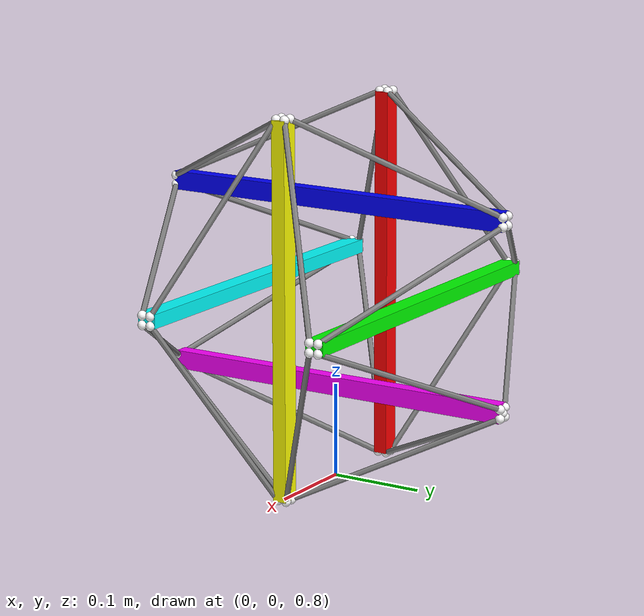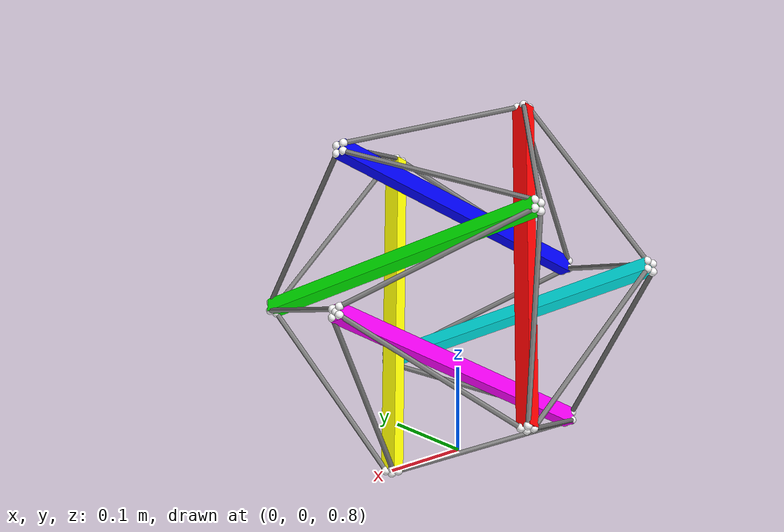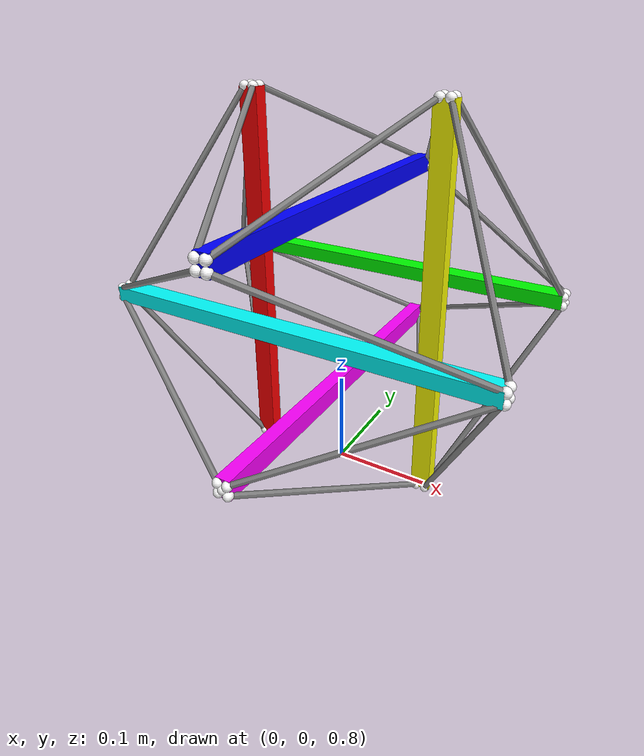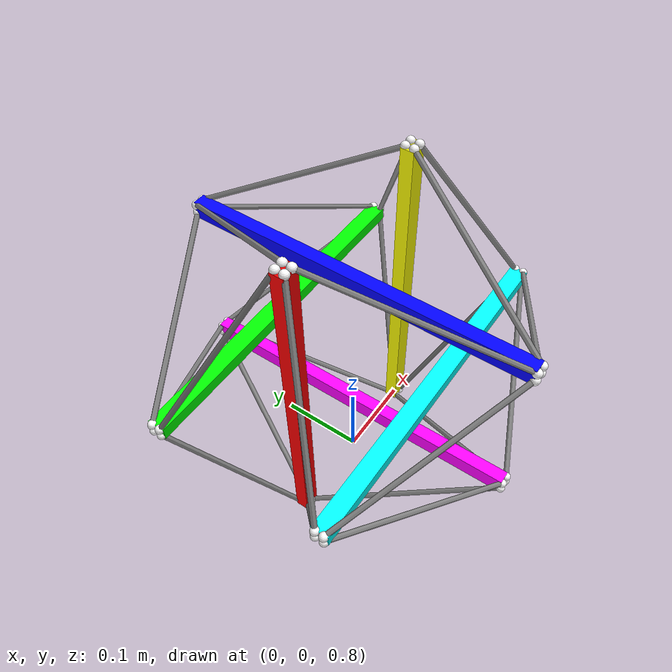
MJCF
<mujoco model="tensegrity">
  <option timestep="0.002" collision="predefined"/>
  <default>
    <site size="0.005" rgba="1 1 1 1"/>
    <default class="tendon_actuator">
      <general ctrllimited="true" ctrlrange="-10.0 0" dyntype="filter" dynprm="0.02"/> <!-- for real2sim -->
    </default>
    <default class="tendon_spatial">
      <tendon damping="5" stiffness="50" frictionloss="0.5"/>
    </default>
  </default>
  <worldbody>
    <light pos="0 1 1" dir="0 -1 -1" diffuse="1 1 1"/>

      <!-- link -->
    <body name="link1" pos="-0.1 0 1">
      <geom name="link1" type="box" size="0.01 0.0075 0.2" mass="0.1" rgba="1 0 0 1" pos="0 0 0"/>
      <joint name="link1" type="free"/>
      <site name="link1_top1" pos="0.005 0.005 0.2"/>
      <site name="link1_top2" pos="-0.005 0.005 0.2"/>
      <site name="link1_top3" pos="-0.005 -0.005 0.2"/>
      <site name="link1_top4" pos="0.005 -0.005 0.2"/>
      <site name="link1_bottom1" pos="0.005 0.005 -0.2"/>
      <site name="link1_bottom2" pos="-0.005 0.005 -0.2"/>
      <site name="link1_bottom3" pos="-0.005 -0.005 -0.2"/>
      <site name="link1_bottom4" pos="0.005 -0.005 -0.2"/>
      <site name="imu" pos="0.0 0 0"/>
    </body>

    <body name="link2" pos="0.1 0 1">
      <geom name="link2" type="box" size="0.01 0.0075 0.2" mass="0.1" rgba="1 1 0 1" pos="0 0 0"/>
      <joint name="link2" type="free"/>
      <site name="link2_top1" pos="0.005 0.005 0.2"/>
      <site name="link2_top2" pos="-0.005 0.005 0.2"/>
      <site name="link2_top3" pos="-0.005 -0.005 0.2"/>
      <site name="link2_top4" pos="0.005 -0.005 0.2"/>
      <site name="link2_bottom1" pos="0.005 0.005 -0.2"/>
      <site name="link2_bottom2" pos="-0.005 0.005 -0.2"/>
      <site name="link2_bottom3" pos="-0.005 -0.005 -0.2"/>
      <site name="link2_bottom4" pos="0.005 -0.005 -0.2"/>
    </body>

    <body name="link3" pos="0 0.1 1">
      <geom name="link3" type="box" size="0.2 0.01 0.0075" mass="0.1" rgba="0 1 0 1" pos="0 0 0"/>
      <joint name="link3" type="free"/>
      <site name="link3_top1" pos="0.2 0.005 0.005"/>
      <site name="link3_top2" pos="0.2 -0.005 0.005"/>
      <site name="link3_top3" pos="0.2 -0.005 -0.005"/>
      <site name="link3_top4" pos="0.2 0.005 -0.005"/>
      <site name="link3_bottom1" pos="-0.2 0.005 0.005"/>
      <site name="link3_bottom2" pos="-0.2 -0.005 0.005"/>
      <site name="link3_bottom3" pos="-0.2 -0.005 -0.005"/>
      <site name="link3_bottom4" pos="-0.2 0.005 -0.005"/>
    </body>

    <body name="link4" pos="0 -0.1 1">
      <geom name="link4" type="box" size="0.2 0.01 0.0075" mass="0.1" rgba="0 1 1 1" pos="0 0 0"/>
      <joint name="link4" type="free"/>
      <site name="link4_top1" pos="0.2 0.005 0.005"/>
      <site name="link4_top2" pos="0.2 -0.005 0.005"/>
      <site name="link4_top3" pos="0.2 -0.005 -0.005"/>
      <site name="link4_top4" pos="0.2 0.005 -0.005"/>
      <site name="link4_bottom1" pos="-0.2 0.005 0.005"/>
      <site name="link4_bottom2" pos="-0.2 -0.005 0.005"/>
      <site name="link4_bottom3" pos="-0.2 -0.005 -0.005"/>
      <site name="link4_bottom4" pos="-0.2 0.005 -0.005"/>
    </body>

    <body name="link5" pos="0 0 1.1">
      <geom name="link5" type="box" size="0.0075 0.2 0.01" mass="0.1" rgba="0 0 1 1" pos="0 0 0"/>
      <joint name="link5" type="free"/>
      <site name="link5_top1" pos="0.005 0.2 0.005"/>
      <site name="link5_top2" pos="0.005 0.2 -0.005"/>
      <site name="link5_top3" pos="-0.005 0.2 -0.005"/>
      <site name="link5_top4" pos="-0.005 0.2 0.005"/>
      <site name="link5_bottom1" pos="0.005 -0.2 0.005"/>
      <site name="link5_bottom2" pos="0.005 -0.2 -0.005"/>
      <site name="link5_bottom3" pos="-0.005 -0.2 -0.005"/>
      <site name="link5_bottom4" pos="-0.005 -0.2 0.005"/>
    </body>

    <body name="link6" pos="0 0 0.9">
      <geom name="link6" type="box" size="0.0075 0.2 0.01" mass="0.1" rgba="1 0 1 1" pos="0 0 0"/>
      <joint name="link6" type="free"/>
      <site name="link6_top" pos="0.0 0.2 0.0"/>
      <site name="link6_top1" pos="0.005 0.2 0.005"/>
      <site name="link6_top2" pos="0.005 0.2 -0.005"/>
      <site name="link6_top3" pos="-0.005 0.2 -0.005"/>
      <site name="link6_top4" pos="-0.005 0.2 0.005"/>
      <site name="link6_bottom" pos="0.0 -0.2 0.0"/>
      <site name="link6_bottom1" pos="0.005 -0.2 0.005"/>
      <site name="link6_bottom2" pos="0.005 -0.2 -0.005"/>
      <site name="link6_bottom3" pos="-0.005 -0.2 -0.005"/>
      <site name="link6_bottom4" pos="-0.005 -0.2 0.005"/>
    </body>

  </worldbody>

  <tendon>
    <!-- link1 -->
    <spatial name="link1t_3b" class="tendon_spatial">
      <site site="link1_top2"/>
      <site site="link3_bottom2"/>
    </spatial>
    <spatial name="link1t_4b" class="tendon_spatial">
      <site site="link1_top3"/>
      <site site="link4_bottom1"/>
    </spatial>
    <spatial name="link1b_3b" class="tendon_spatial">
      <site site="link1_bottom2"/>
      <site site="link3_bottom3"/>
    </spatial>
    <spatial name="link1b_4b" class="tendon_spatial">
      <site site="link1_bottom3"/>
      <site site="link4_bottom4"/>
    </spatial>
    <spatial name="link1b_6t" class="tendon_spatial">
      <site site="link1_bottom1"/>
      <site site="link6_top3"/>
    </spatial>
    <spatial name="link1b_6b" class="tendon_spatial">
      <site site="link1_bottom4"/>
      <site site="link6_bottom3"/>
    </spatial>
    <spatial name="link1t_5t" class="tendon_spatial">
      <site site="link1_top1"/>
      <site site="link5_top4"/>
    </spatial>
    <spatial name="link1t_5b" class="tendon_spatial">
      <site site="link1_top4"/>
      <site site="link5_bottom4"/>
    </spatial>

    <!-- link2 -->
    <spatial name="link2t_3t" class="tendon_spatial">
      <site site="link2_top1"/>
      <site site="link3_top2"/>
    </spatial>
    <spatial name="link2t_4t" class="tendon_spatial">
      <site site="link2_top4"/>
      <site site="link4_top1"/>
    </spatial>
    <spatial name="link2b_3t" class="tendon_spatial">
      <site site="link2_bottom1"/>
      <site site="link3_top3"/>
    </spatial>
    <spatial name="link2b_4t" class="tendon_spatial">
      <site site="link2_bottom4"/>
      <site site="link4_top4"/>
    </spatial>
    <spatial name="link2b_6t" class="tendon_spatial">
      <site site="link2_bottom2"/>
      <site site="link6_top2"/>
    </spatial>
    <spatial name="link2b_6b" class="tendon_spatial">
      <site site="link2_bottom3"/>
      <site site="link6_bottom2"/>
    </spatial>
    <spatial name="link2t_5t" class="tendon_spatial">
      <site site="link2_top2"/>
      <site site="link5_top1"/>
    </spatial>
    <spatial name="link2t_5b" class="tendon_spatial">
      <site site="link2_top3"/>
      <site site="link5_bottom1"/>
    </spatial>

    <!-- link3 -->
    <spatial name="link3t_5t" class="tendon_spatial">
      <site site="link3_top1"/>
      <site site="link5_top2"/>
    </spatial>
    <spatial name="link3b_5t" class="tendon_spatial">
      <site site="link3_bottom1"/>
      <site site="link5_top3"/>
    </spatial>
    <spatial name="link3t_6t" class="tendon_spatial">
      <site site="link3_top4"/>
      <site site="link6_top1"/>
    </spatial>
    <spatial name="link3b_6t" class="tendon_spatial">
      <site site="link3_bottom4"/>
      <site site="link6_top4"/>
    </spatial>

    <!-- link4 -->
    <spatial name="link4t_5b" class="tendon_spatial">
      <site site="link4_top2"/>
      <site site="link5_bottom2"/>
    </spatial>
    <spatial name="link4b_5b" class="tendon_spatial">
      <site site="link4_bottom2"/>
      <site site="link5_bottom3"/>
    </spatial>
    <spatial name="link4t_6b" class="tendon_spatial">
      <site site="link4_top3"/>
      <site site="link6_bottom1"/>
    </spatial>
    <spatial name="link4b_6b" class="tendon_spatial">
      <site site="link4_bottom3"/>
      <site site="link6_bottom4"/>
    </spatial>
  </tendon>

  <actuator>
    <!-- tention-controlled actuators-->
    <general name="link1t_3b" tendon="link1t_3b"  class="tendon_actuator"/>
    <general name="link1t_4b" tendon="link1t_4b"  class="tendon_actuator"/>
    <general name="link1b_3b" tendon="link1b_3b"  class="tendon_actuator"/>
    <general name="link1b_4b" tendon="link1b_4b"  class="tendon_actuator"/>
    <general name="link1b_6t" tendon="link1b_6t"  class="tendon_actuator"/>
    <general name="link1b_6b" tendon="link1b_6b"  class="tendon_actuator"/>
    <general name="link1t_5t" tendon="link1t_5t"  class="tendon_actuator"/>
    <general name="link1t_5b" tendon="link1t_5b"  class="tendon_actuator"/>
    <general name="link2t_3t" tendon="link2t_3t"  class="tendon_actuator"/>
    <general name="link2t_4t" tendon="link2t_4t"  class="tendon_actuator"/>
    <general name="link2b_3t" tendon="link2b_3t"  class="tendon_actuator"/>
    <general name="link2b_4t" tendon="link2b_4t"  class="tendon_actuator"/>
    <general name="link2b_6t" tendon="link2b_6t"  class="tendon_actuator"/>
    <general name="link2b_6b" tendon="link2b_6b"  class="tendon_actuator"/>
    <general name="link2t_5t" tendon="link2t_5t"  class="tendon_actuator"/>
    <general name="link2t_5b" tendon="link2t_5b"  class="tendon_actuator"/>
    <general name="link3t_5t" tendon="link3t_5t"  class="tendon_actuator"/>
    <general name="link3b_5t" tendon="link3b_5t"  class="tendon_actuator"/>
    <general name="link3t_6t" tendon="link3t_6t"  class="tendon_actuator"/>
    <general name="link3b_6t" tendon="link3b_6t"  class="tendon_actuator"/>
    <general name="link4t_5b" tendon="link4t_5b"  class="tendon_actuator"/>
    <general name="link4b_5b" tendon="link4b_5b"  class="tendon_actuator"/>
    <general name="link4b_6b" tendon="link4b_6b"  class="tendon_actuator"/>
    <general name="link4t_6b" tendon="link4t_5b"  class="tendon_actuator"/>
  </actuator>

  <sensor>
  </sensor>

</mujoco>
